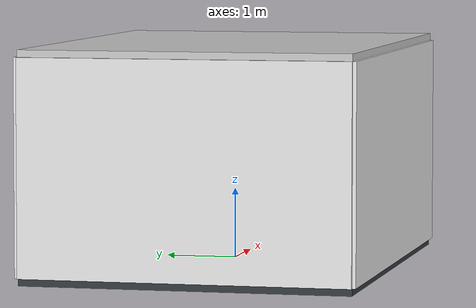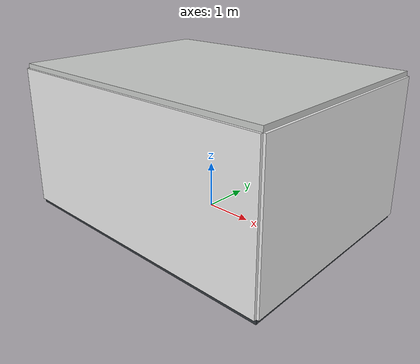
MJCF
<mujoco model="TinyRacer figure-eight obstacle room">
  <option integrator="RK4" density="1.225" viscosity="1.8e-5" timestep="0.001"/>
  <compiler inertiafromgeom="false" autolimits="true" angle="degree"/>
  <statistic center="0 0 1.5" extent="4.5"/>
  <visual>
    <headlight diffuse="0.12 0.12 0.12" ambient="0.08 0.08 0.08"
               specular="0 0 0"/>
    <rgba haze="0.03 0.03 0.03 0" fog="1 1 1 0"/>
    <map fogstart="0" fogend="0"/>
    <global azimuth="135" elevation="-25" ellipsoidinertia="true"/>
  </visual>

  <asset>
    <texture name="figure8_floor_texture" type="2d" builtin="checker"
             rgb1="0.25 0.28 0.30" rgb2="0.16 0.18 0.20"
             width="512" height="512"/>
    <texture name="figure8_wall_texture" type="2d"
             file="textures/off_white_painted_plaster.png"/>
    <material name="figure8_floor" texture="figure8_floor_texture"
              texrepeat="7 6" texuniform="true" reflectance="0.10"
              specular="0.14" shininess="0.20"/>
    <material name="figure8_wall" texture="figure8_wall_texture"
              texrepeat="4 2" texuniform="true" rgba="1 1 1 1"
              specular="0.07" shininess="0.10"/>
    <material name="figure8_ceiling" rgba="0.80 0.81 0.80 1"
              specular="0.03" shininess="0.06"/>
    <material name="strip_light" rgba="1 0.98 0.87 1"
              emission="1" specular="0" shininess="0"/>
  </asset>

  <worldbody>
    <camera name="figure8_room_preview" pos="0 -4.0 3.2"
            xyaxes="1 0 0 0 0.45 0.893" fovy="58"/>

    <geom name="figure8_floor" type="box" pos="0 0 -0.05"
          size="3.05 2.30 0.05" material="figure8_floor"
          contype="1" conaffinity="1"/>
    <geom name="figure8_north_wall" type="box" pos="0 2.30 1.5"
          size="3.05 0.05 1.5" material="figure8_wall"
          contype="1" conaffinity="1"/>
    <geom name="figure8_south_wall" type="box" pos="0 -2.30 1.5"
          size="3.05 0.05 1.5" material="figure8_wall"
          contype="1" conaffinity="1"/>
    <geom name="figure8_east_wall" type="box" pos="3.05 0 1.5"
          size="0.05 2.30 1.5" material="figure8_wall"
          contype="1" conaffinity="1"/>
    <geom name="figure8_west_wall" type="box" pos="-3.05 0 1.5"
          size="0.05 2.30 1.5" material="figure8_wall"
          contype="1" conaffinity="1"/>
    <geom name="figure8_ceiling" type="box" pos="0 0 3.05"
          size="3.05 2.30 0.05" material="figure8_ceiling"
          contype="1" conaffinity="1"/>

    <geom name="right_lobe_lower_pylon" type="box"
          pos="1.46 -0.33 1.5" size="0.08 0.08 0.85"
          rgba="0.80 0.19 0.12 1" contype="1" conaffinity="1"/>
    <geom name="left_lobe_upper_pylon" type="box"
          pos="-1.03 0.75 1.5" size="0.08 0.08 0.85"
          rgba="0.10 0.38 0.79 1" contype="1" conaffinity="1"/>
    <geom name="left_lobe_lower_pylon" type="box"
          pos="-1.29 -0.66 1.5" size="0.08 0.08 0.85"
          rgba="0.90 0.57 0.08 1" contype="1" conaffinity="1"/>

    <!-- A pair of visible ceiling strips and six local sources avoid the
         severe luminance falloff that makes onboard-camera inference brittle. -->
    <geom name="ceiling_strip_x" type="box" pos="0 0 2.985"
          size="2.60 0.045 0.015" material="strip_light"
          contype="0" conaffinity="0"/>
    <geom name="ceiling_strip_y" type="box" pos="0 0 2.984"
          size="0.045 1.85 0.015" material="strip_light"
          contype="0" conaffinity="0"/>
    <light name="figure8_light_ne" pos="1.55 1.05 2.94" dir="0 0 -1"
           diffuse="0.80 0.79 0.72" specular="0.10 0.10 0.09"
           cutoff="78" exponent="1" attenuation="0.28 0.08 0.02"
           castshadow="true"/>
    <light name="figure8_light_e" pos="1.55 -1.05 2.94" dir="0 0 -1"
           diffuse="0.80 0.79 0.72" specular="0.10 0.10 0.09"
           cutoff="78" exponent="1" attenuation="0.28 0.08 0.02"
           castshadow="true"/>
    <light name="figure8_light_n" pos="0 1.05 2.94" dir="0 0 -1"
           diffuse="0.80 0.79 0.72" specular="0.10 0.10 0.09"
           cutoff="78" exponent="1" attenuation="0.28 0.08 0.02"
           castshadow="true"/>
    <light name="figure8_light_s" pos="0 -1.05 2.94" dir="0 0 -1"
           diffuse="0.80 0.79 0.72" specular="0.10 0.10 0.09"
           cutoff="78" exponent="1" attenuation="0.28 0.08 0.02"
           castshadow="true"/>
    <light name="figure8_light_nw" pos="-1.55 1.05 2.94" dir="0 0 -1"
           diffuse="0.80 0.79 0.72" specular="0.10 0.10 0.09"
           cutoff="78" exponent="1" attenuation="0.28 0.08 0.02"
           castshadow="true"/>
    <light name="figure8_light_w" pos="-1.55 -1.05 2.94" dir="0 0 -1"
           diffuse="0.80 0.79 0.72" specular="0.10 0.10 0.09"
           cutoff="78" exponent="1" attenuation="0.28 0.08 0.02"
           castshadow="true"/>
  </worldbody>
</mujoco>
